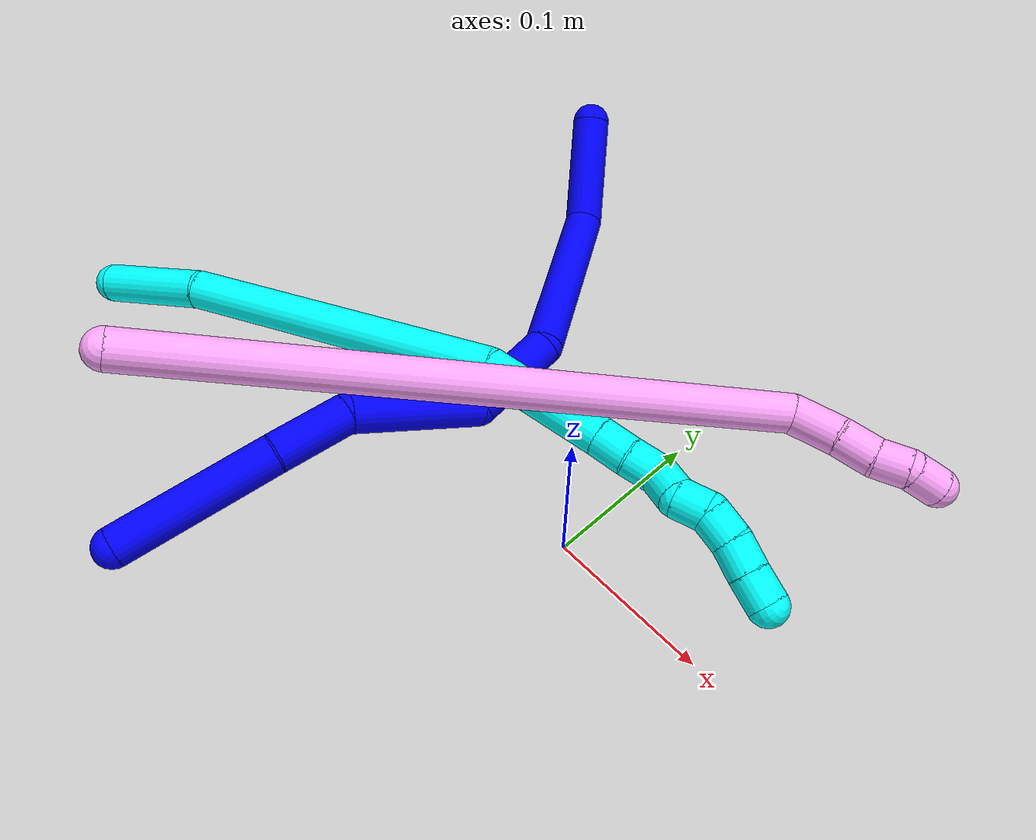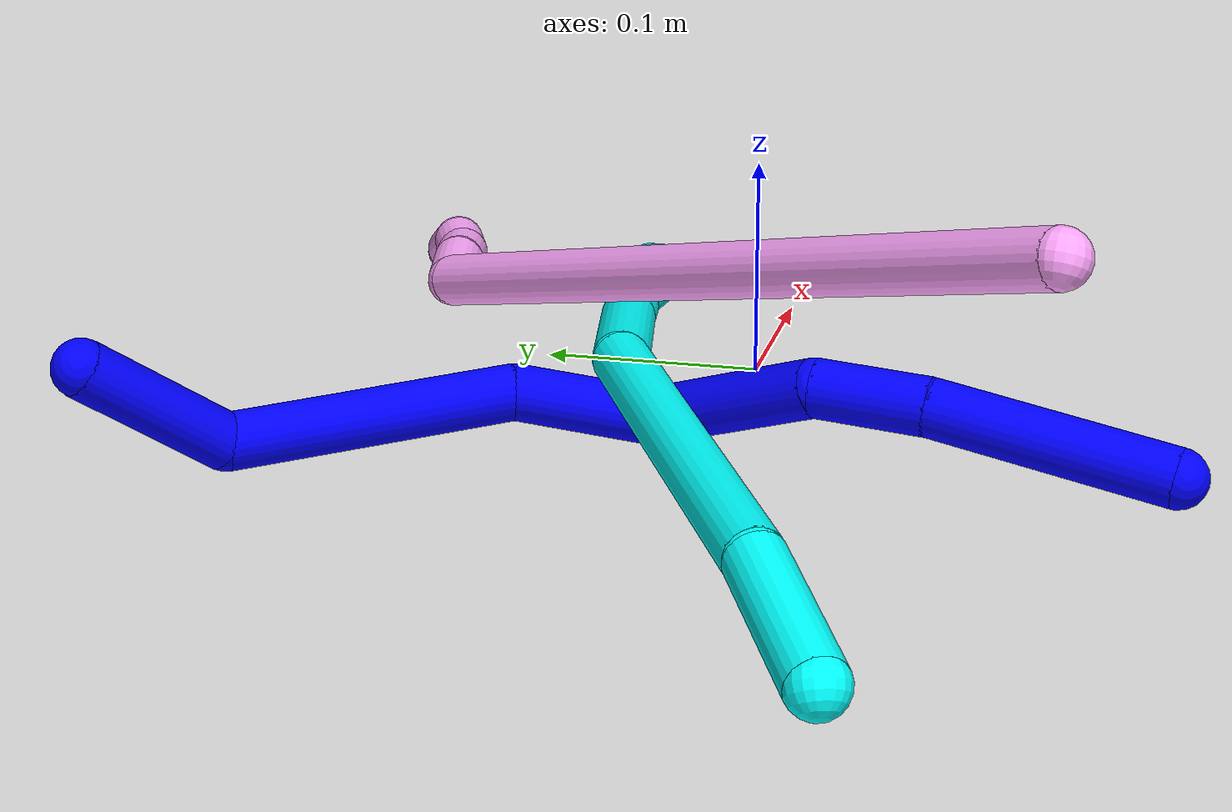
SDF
<sdf version="1.7">
 <world name="default">
  <model name="1">
   <static>0</static>
   <link name="1">
    <collision name="collision-cylinder-e_1_1_4">
     <pose>0.014513 0.045211 -0.019515 -1.97827 0.286604 -0.432032</pose>
     <geometry><cylinder><radius>0.0125</radius><length>0.102674</length></cylinder></geometry>
     <surface>
      <friction><ode><mu>1.16</mu><mu2>1.16</mu2><slip1>0</slip1><slip2>0</slip2></ode></friction>
      <contact><ode><kp>1e+06</kp><kd>1</kd><max_vel>0</max_vel><min_depth>0.001</min_depth></ode></contact>
     </surface>
    </collision>
    <visual name="visual-cylinder-e_1_1_4">
     <pose>0.014513 0.045211 -0.019515 -1.97827 0.286604 -0.432032</pose>
     <geometry><cylinder><radius>0.0125</radius><length>0.102674</length></cylinder></geometry>
     <material><ambient>0 0 1 1</ambient></material>
    </visual>
    <collision name="collision-cylinder-e_2_4_5">
     <pose>0.033302 0.112284 -0.048863 -1.9935 0.176544 -0.272015</pose>
     <geometry><cylinder><radius>0.0125</radius><length>0.048701</length></cylinder></geometry>
     <surface>
      <friction><ode><mu>1.16</mu><mu2>1.16</mu2><slip1>0</slip1><slip2>0</slip2></ode></friction>
      <contact><ode><kp>1e+06</kp><kd>1</kd><max_vel>0</max_vel><min_depth>0.001</min_depth></ode></contact>
     </surface>
    </collision>
    <visual name="visual-cylinder-e_2_4_5">
     <pose>0.033302 0.112284 -0.048863 -1.9935 0.176544 -0.272015</pose>
     <geometry><cylinder><radius>0.0125</radius><length>0.048701</length></cylinder></geometry>
     <material><ambient>0 0 1 1</ambient></material>
    </visual>
    <collision name="collision-cylinder-e_3_5_6">
     <pose>0.036875 0.162937 -0.091548 -2.42198 -0.01612 0.042845</pose>
     <geometry><cylinder><radius>0.0125</radius><length>0.087375</length></cylinder></geometry>
     <surface>
      <friction><ode><mu>1.16</mu><mu2>1.16</mu2><slip1>0</slip1><slip2>0</slip2></ode></friction>
      <contact><ode><kp>1e+06</kp><kd>1</kd><max_vel>0</max_vel><min_depth>0.001</min_depth></ode></contact>
     </surface>
    </collision>
    <visual name="visual-cylinder-e_3_5_6">
     <pose>0.036875 0.162937 -0.091548 -2.42198 -0.01612 0.042845</pose>
     <geometry><cylinder><radius>0.0125</radius><length>0.087375</length></cylinder></geometry>
     <material><ambient>0 0 1 1</ambient></material>
    </visual>
    <collision name="collision-cylinder-e_4_6_7">
     <pose>0.039993 0.221229 -0.130757 -1.78306 0.125998 -0.155935</pose>
     <geometry><cylinder><radius>0.0125</radius><length>0.060839</length></cylinder></geometry>
     <surface>
      <friction><ode><mu>1.16</mu><mu2>1.16</mu2><slip1>0</slip1><slip2>0</slip2></ode></friction>
      <contact><ode><kp>1e+06</kp><kd>1</kd><max_vel>0</max_vel><min_depth>0.001</min_depth></ode></contact>
     </surface>
    </collision>
    <visual name="visual-cylinder-e_4_6_7">
     <pose>0.039993 0.221229 -0.130757 -1.78306 0.125998 -0.155935</pose>
     <geometry><cylinder><radius>0.0125</radius><length>0.060839</length></cylinder></geometry>
     <material><ambient>0 0 1 1</ambient></material>
    </visual>
    <collision name="collision-cylinder-e_5_7_8">
     <pose>0.024171 0.310887 -0.130435 -1.4602 -0.31383 0.281366</pose>
     <geometry><cylinder><radius>0.0125</radius><length>0.127271</length></cylinder></geometry>
     <surface>
      <friction><ode><mu>1.16</mu><mu2>1.16</mu2><slip1>0</slip1><slip2>0</slip2></ode></friction>
      <contact><ode><kp>1e+06</kp><kd>1</kd><max_vel>0</max_vel><min_depth>0.001</min_depth></ode></contact>
     </surface>
    </collision>
    <visual name="visual-cylinder-e_5_7_8">
     <pose>0.024171 0.310887 -0.130435 -1.4602 -0.31383 0.281366</pose>
     <geometry><cylinder><radius>0.0125</radius><length>0.127271</length></cylinder></geometry>
     <material><ambient>0 0 1 1</ambient></material>
    </visual>
    <collision name="collision-cylinder-e_6_8_2">
     <pose>0.011749 0.401009 -0.104073 -0.989643 0.198796 -0.107521</pose>
     <geometry><cylinder><radius>0.0125</radius><length>0.07314</length></cylinder></geometry>
     <surface>
      <friction><ode><mu>1.16</mu><mu2>1.16</mu2><slip1>0</slip1><slip2>0</slip2></ode></friction>
      <contact><ode><kp>1e+06</kp><kd>1</kd><max_vel>0</max_vel><min_depth>0.001</min_depth></ode></contact>
     </surface>
    </collision>
    <visual name="visual-cylinder-e_6_8_2">
     <pose>0.011749 0.401009 -0.104073 -0.989643 0.198796 -0.107521</pose>
     <geometry><cylinder><radius>0.0125</radius><length>0.07314</length></cylinder></geometry>
     <material><ambient>0 0 1 1</ambient></material>
    </visual>
    <collision name="collision-sphere-2">
     <pose>0.018971 0.430973 -0.084392 0 -0 0</pose>
     <geometry><sphere><radius>0.0125</radius></sphere></geometry>
     <surface>
      <friction><ode><mu>1.16</mu><mu2>1.16</mu2><slip1>0</slip1><slip2>0</slip2></ode></friction>
      <contact><ode><kp>1e+06</kp><kd>1</kd><max_vel>0</max_vel><min_depth>0.001</min_depth></ode></contact>
     </surface>
    </collision>
    <visual name="visual-sphere-2">
     <pose>0.018971 0.430973 -0.084392 0 -0 0</pose>
     <geometry><sphere><radius>0.0125</radius></sphere></geometry>
     <material><ambient>0 0 1 1</ambient></material>
    </visual>
    <collision name="collision-sphere-4">
     <pose>0.029026 0.090422 -0.039029 0 -0 0</pose>
     <geometry><sphere><radius>0.0125</radius></sphere></geometry>
     <surface>
      <friction><ode><mu>1.16</mu><mu2>1.16</mu2><slip1>0</slip1><slip2>0</slip2></ode></friction>
      <contact><ode><kp>1e+06</kp><kd>1</kd><max_vel>0</max_vel><min_depth>0.001</min_depth></ode></contact>
     </surface>
    </collision>
    <visual name="visual-sphere-4">
     <pose>0.029026 0.090422 -0.039029 0 -0 0</pose>
     <geometry><sphere><radius>0.0125</radius></sphere></geometry>
     <material><ambient>0 0 1 1</ambient></material>
    </visual>
    <collision name="collision-sphere-1">
     <geometry><sphere><radius>0.0125</radius></sphere></geometry>
     <surface>
      <friction><ode><mu>1.16</mu><mu2>1.16</mu2><slip1>0</slip1><slip2>0</slip2></ode></friction>
      <contact><ode><kp>1e+06</kp><kd>1</kd><max_vel>0</max_vel><min_depth>0.001</min_depth></ode></contact>
     </surface>
    </collision>
    <visual name="visual-sphere-1">
     <geometry><sphere><radius>0.0125</radius></sphere></geometry>
     <material><ambient>0 0 1 1</ambient></material>
    </visual>
    <collision name="collision-sphere-8">
     <pose>0.004527 0.371045 -0.123755 0 -0 0</pose>
     <geometry><sphere><radius>0.0125</radius></sphere></geometry>
     <surface>
      <friction><ode><mu>1.16</mu><mu2>1.16</mu2><slip1>0</slip1><slip2>0</slip2></ode></friction>
      <contact><ode><kp>1e+06</kp><kd>1</kd><max_vel>0</max_vel><min_depth>0.001</min_depth></ode></contact>
     </surface>
    </collision>
    <visual name="visual-sphere-8">
     <pose>0.004527 0.371045 -0.123755 0 -0 0</pose>
     <geometry><sphere><radius>0.0125</radius></sphere></geometry>
     <material><ambient>0 0 1 1</ambient></material>
    </visual>
    <collision name="collision-sphere-5">
     <pose>0.037579 0.134146 -0.058697 0 -0 0</pose>
     <geometry><sphere><radius>0.0125</radius></sphere></geometry>
     <surface>
      <friction><ode><mu>1.16</mu><mu2>1.16</mu2><slip1>0</slip1><slip2>0</slip2></ode></friction>
      <contact><ode><kp>1e+06</kp><kd>1</kd><max_vel>0</max_vel><min_depth>0.001</min_depth></ode></contact>
     </surface>
    </collision>
    <visual name="visual-sphere-5">
     <pose>0.037579 0.134146 -0.058697 0 -0 0</pose>
     <geometry><sphere><radius>0.0125</radius></sphere></geometry>
     <material><ambient>0 0 1 1</ambient></material>
    </visual>
    <collision name="collision-sphere-6">
     <pose>0.03617 0.191728 -0.1244 0 -0 0</pose>
     <geometry><sphere><radius>0.0125</radius></sphere></geometry>
     <surface>
      <friction><ode><mu>1.16</mu><mu2>1.16</mu2><slip1>0</slip1><slip2>0</slip2></ode></friction>
      <contact><ode><kp>1e+06</kp><kd>1</kd><max_vel>0</max_vel><min_depth>0.001</min_depth></ode></contact>
     </surface>
    </collision>
    <visual name="visual-sphere-6">
     <pose>0.03617 0.191728 -0.1244 0 -0 0</pose>
     <geometry><sphere><radius>0.0125</radius></sphere></geometry>
     <material><ambient>0 0 1 1</ambient></material>
    </visual>
    <collision name="collision-sphere-7">
     <pose>0.043816 0.250729 -0.137115 0 -0 0</pose>
     <geometry><sphere><radius>0.0125</radius></sphere></geometry>
     <surface>
      <friction><ode><mu>1.16</mu><mu2>1.16</mu2><slip1>0</slip1><slip2>0</slip2></ode></friction>
      <contact><ode><kp>1e+06</kp><kd>1</kd><max_vel>0</max_vel><min_depth>0.001</min_depth></ode></contact>
     </surface>
    </collision>
    <visual name="visual-sphere-7">
     <pose>0.043816 0.250729 -0.137115 0 -0 0</pose>
     <geometry><sphere><radius>0.0125</radius></sphere></geometry>
     <material><ambient>0 0 1 1</ambient></material>
    </visual>
    <inertial>
     <pose>0.025405 0.213406 -0.0891 0 -0 0</pose>
     <mass>0.5</mass>
     <inertia>
      <ixx>0.000372</ixx>
      <ixy>0</ixy>
      <ixz>0</ixz>
      <iyy>1.3e-05</iyy>
      <iyz>0</iyz>
      <izz>-0.000338</izz>
     </inertia>
    </inertial>
   </link>
   <pose>-0.16166 -0.196694 0.024489 0.248114 -0.954057 0.105483</pose>
  </model>
  <model name="3">
   <static>0</static>
   <link name="3">
    <collision name="collision-cylinder-e_1_1_4">
     <pose>0.009263 -0.019694 -0.027786 2.525 0.265573 0.794318</pose>
     <geometry><cylinder><radius>0.0125</radius><length>0.070589</length></cylinder></geometry>
     <surface>
      <friction><ode><mu>1.16</mu><mu2>1.16</mu2><slip1>0</slip1><slip2>0</slip2></ode></friction>
      <contact><ode><kp>1e+06</kp><kd>1</kd><max_vel>0</max_vel><min_depth>0.001</min_depth></ode></contact>
     </surface>
    </collision>
    <visual name="visual-cylinder-e_1_1_4">
     <pose>0.009263 -0.019694 -0.027786 2.525 0.265573 0.794318</pose>
     <geometry><cylinder><radius>0.0125</radius><length>0.070589</length></cylinder></geometry>
     <material><ambient>0.003922 1 0.996078 1</ambient></material>
    </visual>
    <collision name="collision-cylinder-e_2_4_5">
     <pose>0.057688 -0.107232 -0.121977 2.34547 0.391239 0.880726</pose>
     <geometry><cylinder><radius>0.0125</radius><length>0.205389</length></cylinder></geometry>
     <surface>
      <friction><ode><mu>1.16</mu><mu2>1.16</mu2><slip1>0</slip1><slip2>0</slip2></ode></friction>
      <contact><ode><kp>1e+06</kp><kd>1</kd><max_vel>0</max_vel><min_depth>0.001</min_depth></ode></contact>
     </surface>
    </collision>
    <visual name="visual-cylinder-e_2_4_5">
     <pose>0.057688 -0.107232 -0.121977 2.34547 0.391239 0.880726</pose>
     <geometry><cylinder><radius>0.0125</radius><length>0.205389</length></cylinder></geometry>
     <material><ambient>0.003922 1 0.996078 1</ambient></material>
    </visual>
    <collision name="collision-cylinder-e_3_5_6">
     <pose>0.122896 -0.197114 -0.210946 2.36801 0.690319 1.4464</pose>
     <geometry><cylinder><radius>0.0125</radius><length>0.08181</length></cylinder></geometry>
     <surface>
      <friction><ode><mu>1.16</mu><mu2>1.16</mu2><slip1>0</slip1><slip2>0</slip2></ode></friction>
      <contact><ode><kp>1e+06</kp><kd>1</kd><max_vel>0</max_vel><min_depth>0.001</min_depth></ode></contact>
     </surface>
    </collision>
    <visual name="visual-cylinder-e_3_5_6">
     <pose>0.122896 -0.197114 -0.210946 2.36801 0.690319 1.4464</pose>
     <geometry><cylinder><radius>0.0125</radius><length>0.08181</length></cylinder></geometry>
     <material><ambient>0.003922 1 0.996078 1</ambient></material>
    </visual>
    <collision name="collision-cylinder-e_4_6_7">
     <pose>0.156018 -0.224492 -0.239559 2.41826 0.719761 1.56539</pose>
     <geometry><cylinder><radius>0.0125</radius><length>0.021464</length></cylinder></geometry>
     <surface>
      <friction><ode><mu>1.16</mu><mu2>1.16</mu2><slip1>0</slip1><slip2>0</slip2></ode></friction>
      <contact><ode><kp>1e+06</kp><kd>1</kd><max_vel>0</max_vel><min_depth>0.001</min_depth></ode></contact>
     </surface>
    </collision>
    <visual name="visual-cylinder-e_4_6_7">
     <pose>0.156018 -0.224492 -0.239559 2.41826 0.719761 1.56539</pose>
     <geometry><cylinder><radius>0.0125</radius><length>0.021464</length></cylinder></geometry>
     <material><ambient>0.003922 1 0.996078 1</ambient></material>
    </visual>
    <collision name="collision-cylinder-e_5_7_8">
     <pose>0.169337 -0.235817 -0.250797 2.28518 0.667662 1.29949</pose>
     <geometry><cylinder><radius>0.0125</radius><length>0.020171</length></cylinder></geometry>
     <surface>
      <friction><ode><mu>1.16</mu><mu2>1.16</mu2><slip1>0</slip1><slip2>0</slip2></ode></friction>
      <contact><ode><kp>1e+06</kp><kd>1</kd><max_vel>0</max_vel><min_depth>0.001</min_depth></ode></contact>
     </surface>
    </collision>
    <visual name="visual-cylinder-e_5_7_8">
     <pose>0.169337 -0.235817 -0.250797 2.28518 0.667662 1.29949</pose>
     <geometry><cylinder><radius>0.0125</radius><length>0.020171</length></cylinder></geometry>
     <material><ambient>0.003922 1 0.996078 1</ambient></material>
    </visual>
    <collision name="collision-cylinder-e_6_8_9">
     <pose>0.183347 -0.241944 -0.262368 3.11902 0.882691 3.09383</pose>
     <geometry><cylinder><radius>0.0125</radius><length>0.020105</length></cylinder></geometry>
     <surface>
      <friction><ode><mu>1.16</mu><mu2>1.16</mu2><slip1>0</slip1><slip2>0</slip2></ode></friction>
      <contact><ode><kp>1e+06</kp><kd>1</kd><max_vel>0</max_vel><min_depth>0.001</min_depth></ode></contact>
     </surface>
    </collision>
    <visual name="visual-cylinder-e_6_8_9">
     <pose>0.183347 -0.241944 -0.262368 3.11902 0.882691 3.09383</pose>
     <geometry><cylinder><radius>0.0125</radius><length>0.020105</length></cylinder></geometry>
     <material><ambient>0.003922 1 0.996078 1</ambient></material>
    </visual>
    <collision name="collision-cylinder-e_7_9_10">
     <pose>0.196513 -0.247584 -0.275261 2.44045 0.565025 1.34191</pose>
     <geometry><cylinder><radius>0.0125</radius><length>0.020175</length></cylinder></geometry>
     <surface>
      <friction><ode><mu>1.16</mu><mu2>1.16</mu2><slip1>0</slip1><slip2>0</slip2></ode></friction>
      <contact><ode><kp>1e+06</kp><kd>1</kd><max_vel>0</max_vel><min_depth>0.001</min_depth></ode></contact>
     </surface>
    </collision>
    <visual name="visual-cylinder-e_7_9_10">
     <pose>0.196513 -0.247584 -0.275261 2.44045 0.565025 1.34191</pose>
     <geometry><cylinder><radius>0.0125</radius><length>0.020175</length></cylinder></geometry>
     <material><ambient>0.003922 1 0.996078 1</ambient></material>
    </visual>
    <collision name="collision-cylinder-e_8_10_11">
     <pose>0.210479 -0.257124 -0.285049 2.25198 1.0246 1.73541</pose>
     <geometry><cylinder><radius>0.0125</radius><length>0.020045</length></cylinder></geometry>
     <surface>
      <friction><ode><mu>1.16</mu><mu2>1.16</mu2><slip1>0</slip1><slip2>0</slip2></ode></friction>
      <contact><ode><kp>1e+06</kp><kd>1</kd><max_vel>0</max_vel><min_depth>0.001</min_depth></ode></contact>
     </surface>
    </collision>
    <visual name="visual-cylinder-e_8_10_11">
     <pose>0.210479 -0.257124 -0.285049 2.25198 1.0246 1.73541</pose>
     <geometry><cylinder><radius>0.0125</radius><length>0.020045</length></cylinder></geometry>
     <material><ambient>0.003922 1 0.996078 1</ambient></material>
    </visual>
    <collision name="collision-cylinder-e_9_11_12">
     <pose>0.228459 -0.263921 -0.290504 2.24016 1.21408 1.92445</pose>
     <geometry><cylinder><radius>0.0125</radius><length>0.020098</length></cylinder></geometry>
     <surface>
      <friction><ode><mu>1.16</mu><mu2>1.16</mu2><slip1>0</slip1><slip2>0</slip2></ode></friction>
      <contact><ode><kp>1e+06</kp><kd>1</kd><max_vel>0</max_vel><min_depth>0.001</min_depth></ode></contact>
     </surface>
    </collision>
    <visual name="visual-cylinder-e_9_11_12">
     <pose>0.228459 -0.263921 -0.290504 2.24016 1.21408 1.92445</pose>
     <geometry><cylinder><radius>0.0125</radius><length>0.020098</length></cylinder></geometry>
     <material><ambient>0.003922 1 0.996078 1</ambient></material>
    </visual>
    <collision name="collision-cylinder-e_10_12_2">
     <pose>0.247106 -0.269842 -0.295193 2.24082 1.15783 1.86774</pose>
     <geometry><cylinder><radius>0.0125</radius><length>0.020154</length></cylinder></geometry>
     <surface>
      <friction><ode><mu>1.16</mu><mu2>1.16</mu2><slip1>0</slip1><slip2>0</slip2></ode></friction>
      <contact><ode><kp>1e+06</kp><kd>1</kd><max_vel>0</max_vel><min_depth>0.001</min_depth></ode></contact>
     </surface>
    </collision>
    <visual name="visual-cylinder-e_10_12_2">
     <pose>0.247106 -0.269842 -0.295193 2.24082 1.15783 1.86774</pose>
     <geometry><cylinder><radius>0.0125</radius><length>0.020154</length></cylinder></geometry>
     <material><ambient>0.003922 1 0.996078 1</ambient></material>
    </visual>
    <collision name="collision-sphere-2">
     <pose>0.256336 -0.273012 -0.297705 0 -0 0</pose>
     <geometry><sphere><radius>0.0125</radius></sphere></geometry>
     <surface>
      <friction><ode><mu>1.16</mu><mu2>1.16</mu2><slip1>0</slip1><slip2>0</slip2></ode></friction>
      <contact><ode><kp>1e+06</kp><kd>1</kd><max_vel>0</max_vel><min_depth>0.001</min_depth></ode></contact>
     </surface>
    </collision>
    <visual name="visual-sphere-2">
     <pose>0.256336 -0.273012 -0.297705 0 -0 0</pose>
     <geometry><sphere><radius>0.0125</radius></sphere></geometry>
     <material><ambient>0.003922 1 0.996078 1</ambient></material>
    </visual>
    <collision name="collision-sphere-12">
     <pose>0.237876 -0.266672 -0.292682 0 -0 0</pose>
     <geometry><sphere><radius>0.0125</radius></sphere></geometry>
     <surface>
      <friction><ode><mu>1.16</mu><mu2>1.16</mu2><slip1>0</slip1><slip2>0</slip2></ode></friction>
      <contact><ode><kp>1e+06</kp><kd>1</kd><max_vel>0</max_vel><min_depth>0.001</min_depth></ode></contact>
     </surface>
    </collision>
    <visual name="visual-sphere-12">
     <pose>0.237876 -0.266672 -0.292682 0 -0 0</pose>
     <geometry><sphere><radius>0.0125</radius></sphere></geometry>
     <material><ambient>0.003922 1 0.996078 1</ambient></material>
    </visual>
    <collision name="collision-sphere-11">
     <pose>0.219043 -0.261169 -0.288327 0 -0 0</pose>
     <geometry><sphere><radius>0.0125</radius></sphere></geometry>
     <surface>
      <friction><ode><mu>1.16</mu><mu2>1.16</mu2><slip1>0</slip1><slip2>0</slip2></ode></friction>
      <contact><ode><kp>1e+06</kp><kd>1</kd><max_vel>0</max_vel><min_depth>0.001</min_depth></ode></contact>
     </surface>
    </collision>
    <visual name="visual-sphere-11">
     <pose>0.219043 -0.261169 -0.288327 0 -0 0</pose>
     <geometry><sphere><radius>0.0125</radius></sphere></geometry>
     <material><ambient>0.003922 1 0.996078 1</ambient></material>
    </visual>
    <collision name="collision-sphere-10">
     <pose>0.201915 -0.25308 -0.28177 0 -0 0</pose>
     <geometry><sphere><radius>0.0125</radius></sphere></geometry>
     <surface>
      <friction><ode><mu>1.16</mu><mu2>1.16</mu2><slip1>0</slip1><slip2>0</slip2></ode></friction>
      <contact><ode><kp>1e+06</kp><kd>1</kd><max_vel>0</max_vel><min_depth>0.001</min_depth></ode></contact>
     </surface>
    </collision>
    <visual name="visual-sphere-10">
     <pose>0.201915 -0.25308 -0.28177 0 -0 0</pose>
     <geometry><sphere><radius>0.0125</radius></sphere></geometry>
     <material><ambient>0.003922 1 0.996078 1</ambient></material>
    </visual>
    <collision name="collision-sphere-9">
     <pose>0.191112 -0.242088 -0.268751 0 -0 0</pose>
     <geometry><sphere><radius>0.0125</radius></sphere></geometry>
     <surface>
      <friction><ode><mu>1.16</mu><mu2>1.16</mu2><slip1>0</slip1><slip2>0</slip2></ode></friction>
      <contact><ode><kp>1e+06</kp><kd>1</kd><max_vel>0</max_vel><min_depth>0.001</min_depth></ode></contact>
     </surface>
    </collision>
    <visual name="visual-sphere-9">
     <pose>0.191112 -0.242088 -0.268751 0 -0 0</pose>
     <geometry><sphere><radius>0.0125</radius></sphere></geometry>
     <material><ambient>0.003922 1 0.996078 1</ambient></material>
    </visual>
    <collision name="collision-sphere-4">
     <pose>0.018527 -0.039387 -0.055571 0 -0 0</pose>
     <geometry><sphere><radius>0.0125</radius></sphere></geometry>
     <surface>
      <friction><ode><mu>1.16</mu><mu2>1.16</mu2><slip1>0</slip1><slip2>0</slip2></ode></friction>
      <contact><ode><kp>1e+06</kp><kd>1</kd><max_vel>0</max_vel><min_depth>0.001</min_depth></ode></contact>
     </surface>
    </collision>
    <visual name="visual-sphere-4">
     <pose>0.018527 -0.039387 -0.055571 0 -0 0</pose>
     <geometry><sphere><radius>0.0125</radius></sphere></geometry>
     <material><ambient>0.003922 1 0.996078 1</ambient></material>
    </visual>
    <collision name="collision-sphere-1">
     <geometry><sphere><radius>0.0125</radius></sphere></geometry>
     <surface>
      <friction><ode><mu>1.16</mu><mu2>1.16</mu2><slip1>0</slip1><slip2>0</slip2></ode></friction>
      <contact><ode><kp>1e+06</kp><kd>1</kd><max_vel>0</max_vel><min_depth>0.001</min_depth></ode></contact>
     </surface>
    </collision>
    <visual name="visual-sphere-1">
     <geometry><sphere><radius>0.0125</radius></sphere></geometry>
     <material><ambient>0.003922 1 0.996078 1</ambient></material>
    </visual>
    <collision name="collision-sphere-8">
     <pose>0.175582 -0.2418 -0.255986 0 -0 0</pose>
     <geometry><sphere><radius>0.0125</radius></sphere></geometry>
     <surface>
      <friction><ode><mu>1.16</mu><mu2>1.16</mu2><slip1>0</slip1><slip2>0</slip2></ode></friction>
      <contact><ode><kp>1e+06</kp><kd>1</kd><max_vel>0</max_vel><min_depth>0.001</min_depth></ode></contact>
     </surface>
    </collision>
    <visual name="visual-sphere-8">
     <pose>0.175582 -0.2418 -0.255986 0 -0 0</pose>
     <geometry><sphere><radius>0.0125</radius></sphere></geometry>
     <material><ambient>0.003922 1 0.996078 1</ambient></material>
    </visual>
    <collision name="collision-sphere-5">
     <pose>0.096849 -0.175077 -0.188382 0 -0 0</pose>
     <geometry><sphere><radius>0.0125</radius></sphere></geometry>
     <surface>
      <friction><ode><mu>1.16</mu><mu2>1.16</mu2><slip1>0</slip1><slip2>0</slip2></ode></friction>
      <contact><ode><kp>1e+06</kp><kd>1</kd><max_vel>0</max_vel><min_depth>0.001</min_depth></ode></contact>
     </surface>
    </collision>
    <visual name="visual-sphere-5">
     <pose>0.096849 -0.175077 -0.188382 0 -0 0</pose>
     <geometry><sphere><radius>0.0125</radius></sphere></geometry>
     <material><ambient>0.003922 1 0.996078 1</ambient></material>
    </visual>
    <collision name="collision-sphere-6">
     <pose>0.148944 -0.219151 -0.23351 0 -0 0</pose>
     <geometry><sphere><radius>0.0125</radius></sphere></geometry>
     <surface>
      <friction><ode><mu>1.16</mu><mu2>1.16</mu2><slip1>0</slip1><slip2>0</slip2></ode></friction>
      <contact><ode><kp>1e+06</kp><kd>1</kd><max_vel>0</max_vel><min_depth>0.001</min_depth></ode></contact>
     </surface>
    </collision>
    <visual name="visual-sphere-6">
     <pose>0.148944 -0.219151 -0.23351 0 -0 0</pose>
     <geometry><sphere><radius>0.0125</radius></sphere></geometry>
     <material><ambient>0.003922 1 0.996078 1</ambient></material>
    </visual>
    <collision name="collision-sphere-7">
     <pose>0.163093 -0.229833 -0.245608 0 -0 0</pose>
     <geometry><sphere><radius>0.0125</radius></sphere></geometry>
     <surface>
      <friction><ode><mu>1.16</mu><mu2>1.16</mu2><slip1>0</slip1><slip2>0</slip2></ode></friction>
      <contact><ode><kp>1e+06</kp><kd>1</kd><max_vel>0</max_vel><min_depth>0.001</min_depth></ode></contact>
     </surface>
    </collision>
    <visual name="visual-sphere-7">
     <pose>0.163093 -0.229833 -0.245608 0 -0 0</pose>
     <geometry><sphere><radius>0.0125</radius></sphere></geometry>
     <material><ambient>0.003922 1 0.996078 1</ambient></material>
    </visual>
    <inertial>
     <pose>0.101525 -0.149743 -0.165605 0 -0 0</pose>
     <mass>0.5</mass>
     <inertia>
      <ixx>0.001061</ixx>
      <ixy>0</ixy>
      <ixz>0</ixz>
      <iyy>0.000401</iyy>
      <iyz>0</iyz>
      <izz>0.000181</izz>
     </inertia>
    </inertial>
   </link>
   <pose>-0.350814 -0.084769 0.012494 2.59962 0.422614 -0.6546</pose>
  </model>
  <model name="4">
   <static>0</static>
   <link name="4">
    <collision name="collision-cylinder-e_1_1_4">
     <pose>0.187856 0.072219 -0.00308 -1.61342 1.20347 -1.24356</pose>
     <geometry><cylinder><radius>0.0125</radius><length>0.402566</length></cylinder></geometry>
     <surface>
      <friction><ode><mu>1.16</mu><mu2>1.16</mu2><slip1>0</slip1><slip2>0</slip2></ode></friction>
      <contact><ode><kp>1e+06</kp><kd>1</kd><max_vel>0</max_vel><min_depth>0.001</min_depth></ode></contact>
     </surface>
    </collision>
    <visual name="visual-cylinder-e_1_1_4">
     <pose>0.187856 0.072219 -0.00308 -1.61342 1.20347 -1.24356</pose>
     <geometry><cylinder><radius>0.0125</radius><length>0.402566</length></cylinder></geometry>
     <material><ambient>1 0.65098 0.996078 1</ambient></material>
    </visual>
    <collision name="collision-cylinder-e_2_4_5">
     <pose>0.389574 0.141318 0.001268 0.397612 1.04433 0.230834</pose>
     <geometry><cylinder><radius>0.0125</radius><length>0.032068</length></cylinder></geometry>
     <surface>
      <friction><ode><mu>1.16</mu><mu2>1.16</mu2><slip1>0</slip1><slip2>0</slip2></ode></friction>
      <contact><ode><kp>1e+06</kp><kd>1</kd><max_vel>0</max_vel><min_depth>0.001</min_depth></ode></contact>
     </surface>
    </collision>
    <visual name="visual-cylinder-e_2_4_5">
     <pose>0.389574 0.141318 0.001268 0.397612 1.04433 0.230834</pose>
     <geometry><cylinder><radius>0.0125</radius><length>0.032068</length></cylinder></geometry>
     <material><ambient>1 0.65098 0.996078 1</ambient></material>
    </visual>
    <collision name="collision-cylinder-e_3_5_6">
     <pose>0.414133 0.135465 0.012771 0.590817 1.14071 0.385565</pose>
     <geometry><cylinder><radius>0.0125</radius><length>0.023537</length></cylinder></geometry>
     <surface>
      <friction><ode><mu>1.16</mu><mu2>1.16</mu2><slip1>0</slip1><slip2>0</slip2></ode></friction>
      <contact><ode><kp>1e+06</kp><kd>1</kd><max_vel>0</max_vel><min_depth>0.001</min_depth></ode></contact>
     </surface>
    </collision>
    <visual name="visual-cylinder-e_3_5_6">
     <pose>0.414133 0.135465 0.012771 0.590817 1.14071 0.385565</pose>
     <geometry><cylinder><radius>0.0125</radius><length>0.023537</length></cylinder></geometry>
     <material><ambient>1 0.65098 0.996078 1</ambient></material>
    </visual>
    <collision name="collision-cylinder-e_4_6_7">
     <pose>0.434206 0.132531 0.021028 0.0478 1.15081 0.031007</pose>
     <geometry><cylinder><radius>0.0125</radius><length>0.020536</length></cylinder></geometry>
     <surface>
      <friction><ode><mu>1.16</mu><mu2>1.16</mu2><slip1>0</slip1><slip2>0</slip2></ode></friction>
      <contact><ode><kp>1e+06</kp><kd>1</kd><max_vel>0</max_vel><min_depth>0.001</min_depth></ode></contact>
     </surface>
    </collision>
    <visual name="visual-cylinder-e_4_6_7">
     <pose>0.434206 0.132531 0.021028 0.0478 1.15081 0.031007</pose>
     <geometry><cylinder><radius>0.0125</radius><length>0.020536</length></cylinder></geometry>
     <material><ambient>1 0.65098 0.996078 1</ambient></material>
    </visual>
    <collision name="collision-cylinder-e_5_7_2">
     <pose>0.454142 0.131636 0.024046 2.60303 1.44303 2.53362</pose>
     <geometry><cylinder><radius>0.0125</radius><length>0.021293</length></cylinder></geometry>
     <surface>
      <friction><ode><mu>1.16</mu><mu2>1.16</mu2><slip1>0</slip1><slip2>0</slip2></ode></friction>
      <contact><ode><kp>1e+06</kp><kd>1</kd><max_vel>0</max_vel><min_depth>0.001</min_depth></ode></contact>
     </surface>
    </collision>
    <visual name="visual-cylinder-e_5_7_2">
     <pose>0.454142 0.131636 0.024046 2.60303 1.44303 2.53362</pose>
     <geometry><cylinder><radius>0.0125</radius><length>0.021293</length></cylinder></geometry>
     <material><ambient>1 0.65098 0.996078 1</ambient></material>
    </visual>
    <collision name="collision-sphere-2">
     <pose>0.464701 0.13094 0.022881 0 -0 0</pose>
     <geometry><sphere><radius>0.0125</radius></sphere></geometry>
     <surface>
      <friction><ode><mu>1.16</mu><mu2>1.16</mu2><slip1>0</slip1><slip2>0</slip2></ode></friction>
      <contact><ode><kp>1e+06</kp><kd>1</kd><max_vel>0</max_vel><min_depth>0.001</min_depth></ode></contact>
     </surface>
    </collision>
    <visual name="visual-sphere-2">
     <pose>0.464701 0.13094 0.022881 0 -0 0</pose>
     <geometry><sphere><radius>0.0125</radius></sphere></geometry>
     <material><ambient>1 0.65098 0.996078 1</ambient></material>
    </visual>
    <collision name="collision-sphere-7">
     <pose>0.443582 0.132331 0.02521 0 -0 0</pose>
     <geometry><sphere><radius>0.0125</radius></sphere></geometry>
     <surface>
      <friction><ode><mu>1.16</mu><mu2>1.16</mu2><slip1>0</slip1><slip2>0</slip2></ode></friction>
      <contact><ode><kp>1e+06</kp><kd>1</kd><max_vel>0</max_vel><min_depth>0.001</min_depth></ode></contact>
     </surface>
    </collision>
    <visual name="visual-sphere-7">
     <pose>0.443582 0.132331 0.02521 0 -0 0</pose>
     <geometry><sphere><radius>0.0125</radius></sphere></geometry>
     <material><ambient>1 0.65098 0.996078 1</ambient></material>
    </visual>
    <collision name="collision-sphere-6">
     <pose>0.42483 0.132731 0.016846 0 -0 0</pose>
     <geometry><sphere><radius>0.0125</radius></sphere></geometry>
     <surface>
      <friction><ode><mu>1.16</mu><mu2>1.16</mu2><slip1>0</slip1><slip2>0</slip2></ode></friction>
      <contact><ode><kp>1e+06</kp><kd>1</kd><max_vel>0</max_vel><min_depth>0.001</min_depth></ode></contact>
     </surface>
    </collision>
    <visual name="visual-sphere-6">
     <pose>0.42483 0.132731 0.016846 0 -0 0</pose>
     <geometry><sphere><radius>0.0125</radius></sphere></geometry>
     <material><ambient>1 0.65098 0.996078 1</ambient></material>
    </visual>
    <collision name="collision-sphere-5">
     <pose>0.403437 0.138198 0.008696 0 -0 0</pose>
     <geometry><sphere><radius>0.0125</radius></sphere></geometry>
     <surface>
      <friction><ode><mu>1.16</mu><mu2>1.16</mu2><slip1>0</slip1><slip2>0</slip2></ode></friction>
      <contact><ode><kp>1e+06</kp><kd>1</kd><max_vel>0</max_vel><min_depth>0.001</min_depth></ode></contact>
     </surface>
    </collision>
    <visual name="visual-sphere-5">
     <pose>0.403437 0.138198 0.008696 0 -0 0</pose>
     <geometry><sphere><radius>0.0125</radius></sphere></geometry>
     <material><ambient>1 0.65098 0.996078 1</ambient></material>
    </visual>
    <collision name="collision-sphere-1">
     <geometry><sphere><radius>0.0125</radius></sphere></geometry>
     <surface>
      <friction><ode><mu>1.16</mu><mu2>1.16</mu2><slip1>0</slip1><slip2>0</slip2></ode></friction>
      <contact><ode><kp>1e+06</kp><kd>1</kd><max_vel>0</max_vel><min_depth>0.001</min_depth></ode></contact>
     </surface>
    </collision>
    <visual name="visual-sphere-1">
     <geometry><sphere><radius>0.0125</radius></sphere></geometry>
     <material><ambient>1 0.65098 0.996078 1</ambient></material>
    </visual>
    <collision name="collision-sphere-4">
     <pose>0.375711 0.144438 -0.00616 0 -0 0</pose>
     <geometry><sphere><radius>0.0125</radius></sphere></geometry>
     <surface>
      <friction><ode><mu>1.16</mu><mu2>1.16</mu2><slip1>0</slip1><slip2>0</slip2></ode></friction>
      <contact><ode><kp>1e+06</kp><kd>1</kd><max_vel>0</max_vel><min_depth>0.001</min_depth></ode></contact>
     </surface>
    </collision>
    <visual name="visual-sphere-4">
     <pose>0.375711 0.144438 -0.00616 0 -0 0</pose>
     <geometry><sphere><radius>0.0125</radius></sphere></geometry>
     <material><ambient>1 0.65098 0.996078 1</ambient></material>
    </visual>
    <inertial>
     <pose>0.232903 0.084635 9e-05 0 -0 0</pose>
     <mass>0.5</mass>
     <inertia>
      <ixx>-0.001184</ixx>
      <ixy>0</ixy>
      <ixz>0</ixz>
      <iyy>0.002906</iyy>
      <iyz>0</iyz>
      <izz>-0.00705</izz>
     </inertia>
    </inertial>
   </link>
   <pose>-0.20294 -0.148983 0.122411 0.330513 0.375852 0.546893</pose>
  </model>
 </world>
</sdf>
